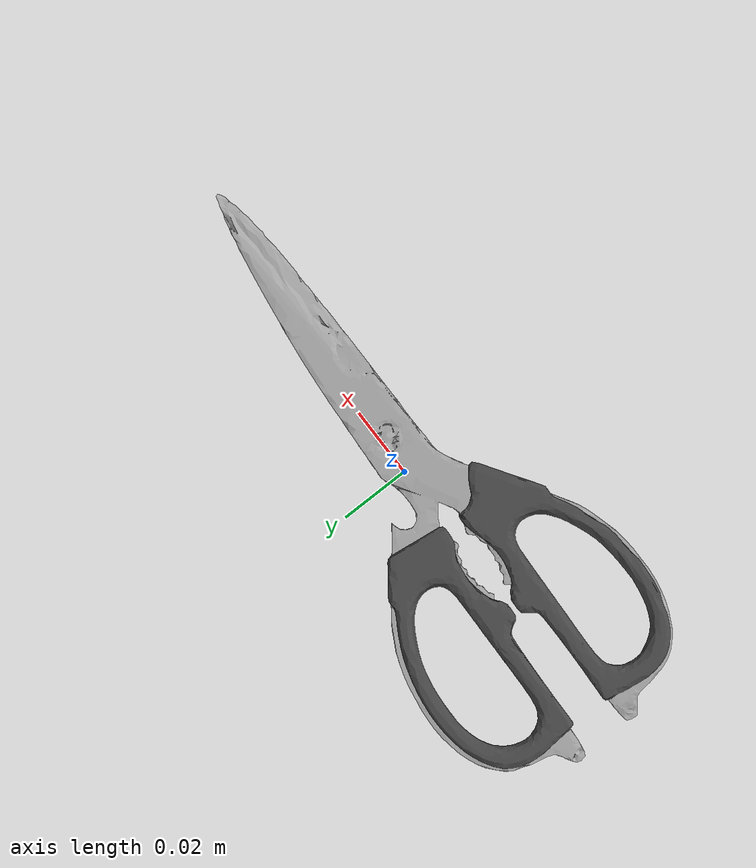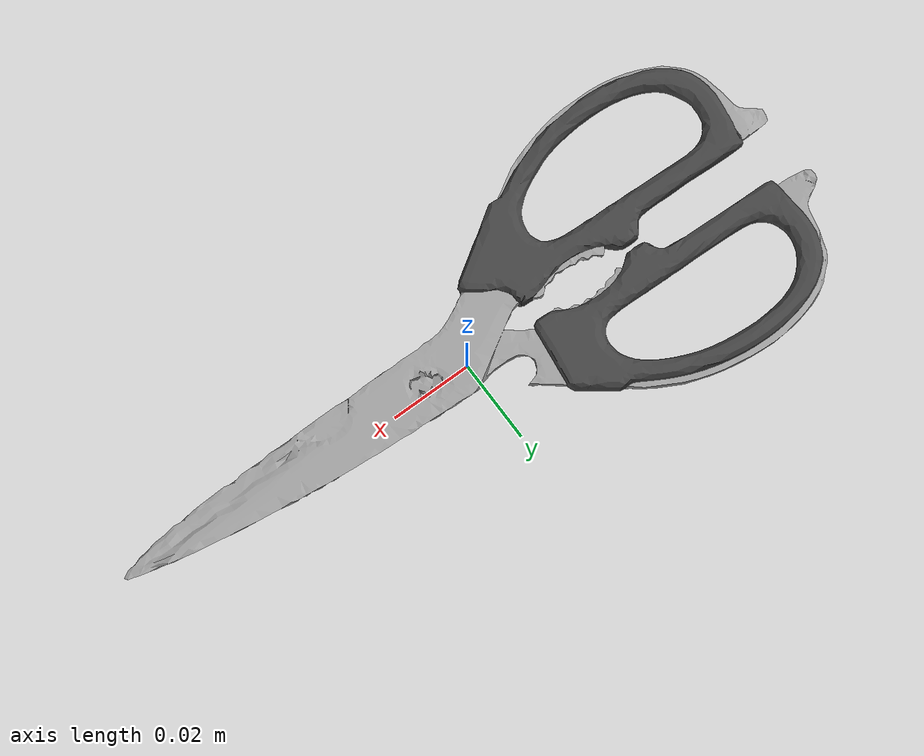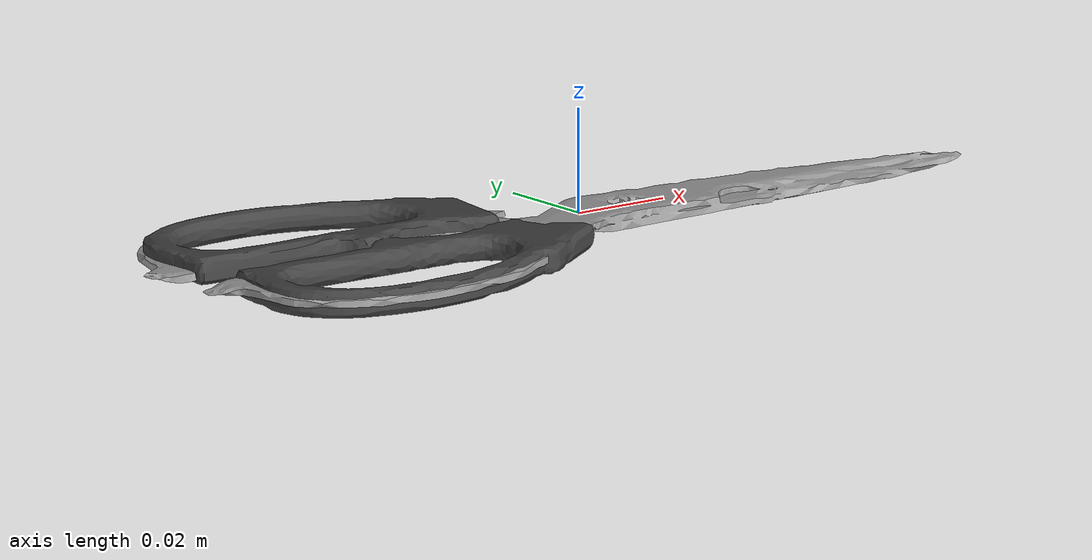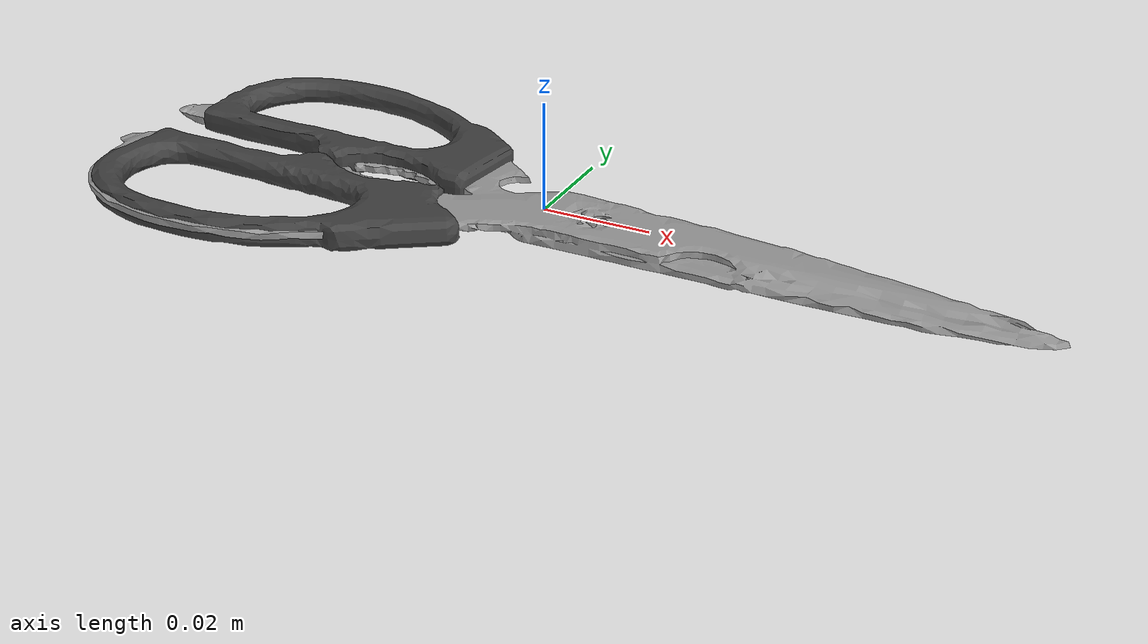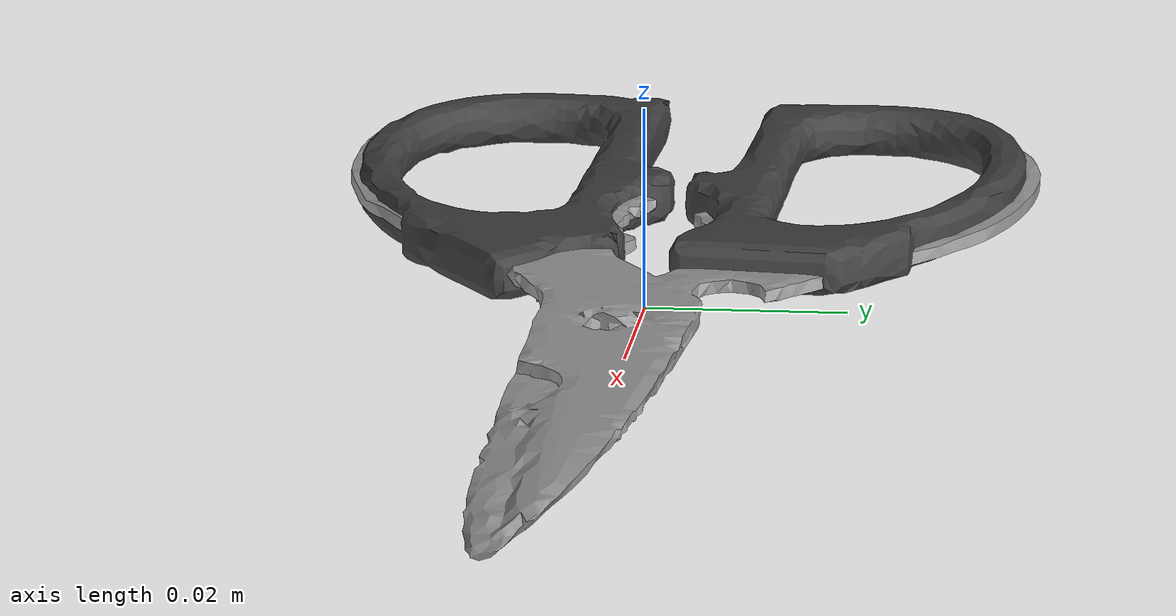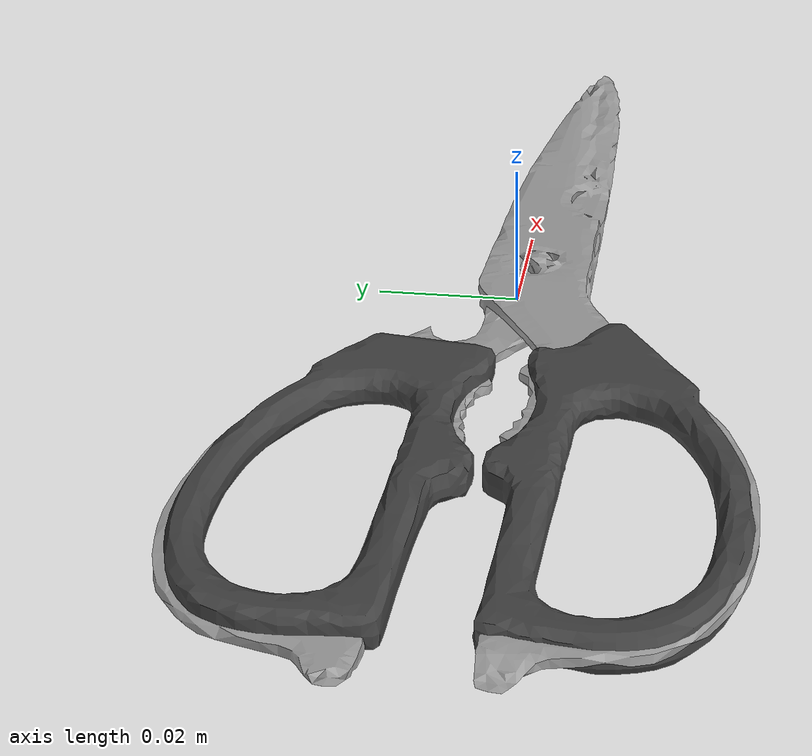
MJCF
<?xml version="1.0" ?>
<mujoco model="scissors_1">
	<compiler meshdir="scissors_1/meshes" texturedir="scissors_1/textures" angle="radian" autolimits="true" balanceinertia="true" boundmass="0.000001" boundinertia="0.000001"/>
	<default>
		<default class="visual">
			<geom contype="0" conaffinity="0"/>
		</default>
		<default class="collision">
			<geom rgba="1.0 0.0 0.0 0.0"/>
		</default>
	</default>
	<asset>
		<mesh name="Scissors1Plastics" file="stl/Scissors1Plastics.stl" scale="1.0 1.0 1.0"/>
		<mesh name="Scissors1Plastics_001" file="stl/Scissors1Plastics_001.stl" scale="1.0 1.0 1.0"/>
		<mesh name="Scissors1Plastics_002" file="stl/Scissors1Plastics_002.stl" scale="1.0 1.0 1.0"/>
		<mesh name="Scissors1Plastics_003" file="stl/Scissors1Plastics_003.stl" scale="1.0 1.0 1.0"/>
		<mesh name="Scissors1Plastics_004" file="stl/Scissors1Plastics_004.stl" scale="1.0 1.0 1.0"/>
		<mesh name="Scissors1Plastics_005" file="stl/Scissors1Plastics_005.stl" scale="1.0 1.0 1.0"/>
		<mesh name="Scissors1Plastics_006" file="stl/Scissors1Plastics_006.stl" scale="1.0 1.0 1.0"/>
		<mesh name="Scissors1Plastics_007" file="stl/Scissors1Plastics_007.stl" scale="1.0 1.0 1.0"/>
		<mesh name="Scissors1Plastics_008" file="stl/Scissors1Plastics_008.stl" scale="1.0 1.0 1.0"/>
		<mesh name="Scissors1Plastics_009" file="stl/Scissors1Plastics_009.stl" scale="1.0 1.0 1.0"/>
		<mesh name="Scissors1Plastics_010" file="stl/Scissors1Plastics_010.stl" scale="1.0 1.0 1.0"/>
		<mesh name="Scissors1Plastics_011" file="stl/Scissors1Plastics_011.stl" scale="1.0 1.0 1.0"/>
		<mesh name="Scissors1Plastics_012" file="stl/Scissors1Plastics_012.stl" scale="1.0 1.0 1.0"/>
		<mesh name="Scissors1Plastics_013" file="stl/Scissors1Plastics_013.stl" scale="1.0 1.0 1.0"/>
		<mesh name="Scissors1Plastics_014" file="stl/Scissors1Plastics_014.stl" scale="1.0 1.0 1.0"/>
		<mesh name="Scissors1Plastics_015" file="stl/Scissors1Plastics_015.stl" scale="1.0 1.0 1.0"/>
		<mesh name="Scissors1Plastics_016" file="stl/Scissors1Plastics_016.stl" scale="1.0 1.0 1.0"/>
		<mesh name="Scissors1Plastics_017" file="stl/Scissors1Plastics_017.stl" scale="1.0 1.0 1.0"/>
		<mesh name="Scissors1Plastics_018" file="stl/Scissors1Plastics_018.stl" scale="1.0 1.0 1.0"/>
		<mesh name="Scissors1Plastics_019" file="stl/Scissors1Plastics_019.stl" scale="1.0 1.0 1.0"/>
		<mesh name="Scissors1Plastics_020" file="stl/Scissors1Plastics_020.stl" scale="1.0 1.0 1.0"/>
		<mesh name="Scissors1Metal" file="stl/Scissors1Metal.stl" scale="1.0 1.0 1.0"/>
		<mesh name="Scissors1Metal_001" file="stl/Scissors1Metal_001.stl" scale="1.0 1.0 1.0"/>
		<mesh name="Scissors1Metal_002" file="stl/Scissors1Metal_002.stl" scale="1.0 1.0 1.0"/>
		<mesh name="Scissors1Metal_003" file="stl/Scissors1Metal_003.stl" scale="1.0 1.0 1.0"/>
		<mesh name="Scissors1Metal_004" file="stl/Scissors1Metal_004.stl" scale="1.0 1.0 1.0"/>
		<mesh name="Scissors1Metal_005" file="stl/Scissors1Metal_005.stl" scale="1.0 1.0 1.0"/>
		<mesh name="Scissors1Metal_006" file="stl/Scissors1Metal_006.stl" scale="1.0 1.0 1.0"/>
		<mesh name="Scissors1Metal_007" file="stl/Scissors1Metal_007.stl" scale="1.0 1.0 1.0"/>
		<mesh name="Scissors1Metal_008" file="stl/Scissors1Metal_008.stl" scale="1.0 1.0 1.0"/>
		<mesh name="Scissors1Metal_009" file="stl/Scissors1Metal_009.stl" scale="1.0 1.0 1.0"/>
		<mesh name="Scissors1Metal_010" file="stl/Scissors1Metal_010.stl" scale="1.0 1.0 1.0"/>
		<mesh name="Scissors1Metal_011" file="stl/Scissors1Metal_011.stl" scale="1.0 1.0 1.0"/>
		<mesh name="Scissors1Metal_012" file="stl/Scissors1Metal_012.stl" scale="1.0 1.0 1.0"/>
		<mesh name="Scissors1Metal_013" file="stl/Scissors1Metal_013.stl" scale="1.0 1.0 1.0"/>
		<mesh name="Scissors1Metal_014" file="stl/Scissors1Metal_014.stl" scale="1.0 1.0 1.0"/>
		<material name="M_Scissors1Plastics" rgba="0.2687999904155731 0.2687999904155731 0.2687999904155731 1.0" emission="0.0"/>
		<material name="M_Scissors1Metal" rgba="0.6306999921798706 0.6306999921798706 0.6306999921798706 1.0" emission="0.0"/>
	</asset>
	<worldbody>
		<body name="scissors_1" pos="0.0 0.0 0.0" quat="1.0 0.0 0.0 0.0">
			<body name="scissors1_plastics" pos="0.0 0.0 0.0" quat="1.0 0.0 0.0 0.0">
				<inertial mass="0.06911789625883102" pos="-0.04632521793246269 -0.0011474678758531809 2.4406856482528383e-06" quat="0.9999600052833557 -0.004458646290004253 -2.660231984918937e-05 0.007751482538878918" diaginertia="2.377882628934458e-05 0.00017969933105632663 0.00020322277850937098"/>
				<geom name="Scissors1Plastics" type="mesh" pos="0.0 0.0 0.0" quat="1.0 0.0 0.0 0.0" mesh="Scissors1Plastics" material="M_Scissors1Plastics" class="visual"/>
				<geom name="Scissors1Plastics_001" type="mesh" pos="0.0 0.0 0.0" quat="1.0 0.0 0.0 0.0" mesh="Scissors1Plastics_001" class="collision"/>
				<geom name="Scissors1Plastics_002" type="mesh" pos="0.0 0.0 0.0" quat="1.0 0.0 0.0 0.0" mesh="Scissors1Plastics_002" class="collision"/>
				<geom name="Scissors1Plastics_003" type="mesh" pos="0.0 0.0 0.0" quat="1.0 0.0 0.0 0.0" mesh="Scissors1Plastics_003" class="collision"/>
				<geom name="Scissors1Plastics_004" type="mesh" pos="0.0 0.0 0.0" quat="1.0 0.0 0.0 0.0" mesh="Scissors1Plastics_004" class="collision"/>
				<geom name="Scissors1Plastics_005" type="mesh" pos="0.0 0.0 0.0" quat="1.0 0.0 0.0 0.0" mesh="Scissors1Plastics_005" class="collision"/>
				<geom name="Scissors1Plastics_006" type="mesh" pos="0.0 0.0 0.0" quat="1.0 0.0 0.0 0.0" mesh="Scissors1Plastics_006" class="collision"/>
				<geom name="Scissors1Plastics_007" type="mesh" pos="0.0 0.0 0.0" quat="1.0 0.0 0.0 0.0" mesh="Scissors1Plastics_007" class="collision"/>
				<geom name="Scissors1Plastics_008" type="mesh" pos="0.0 0.0 0.0" quat="1.0 0.0 0.0 0.0" mesh="Scissors1Plastics_008" class="collision"/>
				<geom name="Scissors1Plastics_009" type="mesh" pos="0.0 0.0 0.0" quat="1.0 0.0 0.0 0.0" mesh="Scissors1Plastics_009" class="collision"/>
				<geom name="Scissors1Plastics_010" type="mesh" pos="0.0 0.0 0.0" quat="1.0 0.0 0.0 0.0" mesh="Scissors1Plastics_010" class="collision"/>
				<geom name="Scissors1Plastics_011" type="mesh" pos="0.0 0.0 0.0" quat="1.0 0.0 0.0 0.0" mesh="Scissors1Plastics_011" class="collision"/>
				<geom name="Scissors1Plastics_012" type="mesh" pos="0.0 0.0 0.0" quat="1.0 0.0 0.0 0.0" mesh="Scissors1Plastics_012" class="collision"/>
				<geom name="Scissors1Plastics_013" type="mesh" pos="0.0 0.0 0.0" quat="1.0 0.0 0.0 0.0" mesh="Scissors1Plastics_013" class="collision"/>
				<geom name="Scissors1Plastics_014" type="mesh" pos="0.0 0.0 0.0" quat="1.0 0.0 0.0 0.0" mesh="Scissors1Plastics_014" class="collision"/>
				<geom name="Scissors1Plastics_015" type="mesh" pos="0.0 0.0 0.0" quat="1.0 0.0 0.0 0.0" mesh="Scissors1Plastics_015" class="collision"/>
				<geom name="Scissors1Plastics_016" type="mesh" pos="0.0 0.0 0.0" quat="1.0 0.0 0.0 0.0" mesh="Scissors1Plastics_016" class="collision"/>
				<geom name="Scissors1Plastics_017" type="mesh" pos="0.0 0.0 0.0" quat="1.0 0.0 0.0 0.0" mesh="Scissors1Plastics_017" class="collision"/>
				<geom name="Scissors1Plastics_018" type="mesh" pos="0.0 0.0 0.0" quat="1.0 0.0 0.0 0.0" mesh="Scissors1Plastics_018" class="collision"/>
				<geom name="Scissors1Plastics_019" type="mesh" pos="0.0 0.0 0.0" quat="1.0 0.0 0.0 0.0" mesh="Scissors1Plastics_019" class="collision"/>
				<geom name="Scissors1Plastics_020" type="mesh" pos="0.0 0.0 0.0" quat="1.0 0.0 0.0 0.0" mesh="Scissors1Plastics_020" class="collision"/>
			</body>
			<body name="scissors1_metal" pos="0.0 0.0 0.0" quat="1.0 0.0 0.0 0.0">
				<inertial mass="0.04414314031600952" pos="-0.007116943132132292 -0.0018855701200664043 -0.0001600364048499614" quat="0.9997630715370178 -0.016199924051761627 -0.00011399905633879825 -0.01453721895813942" diaginertia="7.290732810361078e-06 8.119512494886294e-05 8.842754323268309e-05"/>
				<geom name="Scissors1Metal" type="mesh" pos="0.0 0.0 0.0" quat="1.0 0.0 0.0 0.0" mesh="Scissors1Metal" material="M_Scissors1Metal" class="visual"/>
				<geom name="Scissors1Metal_001" type="mesh" pos="0.0 0.0 0.0" quat="1.0 0.0 0.0 0.0" mesh="Scissors1Metal_001" class="collision"/>
				<geom name="Scissors1Metal_002" type="mesh" pos="0.0 0.0 0.0" quat="1.0 0.0 0.0 0.0" mesh="Scissors1Metal_002" class="collision"/>
				<geom name="Scissors1Metal_003" type="mesh" pos="0.0 0.0 0.0" quat="1.0 0.0 0.0 0.0" mesh="Scissors1Metal_003" class="collision"/>
				<geom name="Scissors1Metal_004" type="mesh" pos="0.0 0.0 0.0" quat="1.0 0.0 0.0 0.0" mesh="Scissors1Metal_004" class="collision"/>
				<geom name="Scissors1Metal_005" type="mesh" pos="0.0 0.0 0.0" quat="1.0 0.0 0.0 0.0" mesh="Scissors1Metal_005" class="collision"/>
				<geom name="Scissors1Metal_006" type="mesh" pos="0.0 0.0 0.0" quat="1.0 0.0 0.0 0.0" mesh="Scissors1Metal_006" class="collision"/>
				<geom name="Scissors1Metal_007" type="mesh" pos="0.0 0.0 0.0" quat="1.0 0.0 0.0 0.0" mesh="Scissors1Metal_007" class="collision"/>
				<geom name="Scissors1Metal_008" type="mesh" pos="0.0 0.0 0.0" quat="1.0 0.0 0.0 0.0" mesh="Scissors1Metal_008" class="collision"/>
				<geom name="Scissors1Metal_009" type="mesh" pos="0.0 0.0 0.0" quat="1.0 0.0 0.0 0.0" mesh="Scissors1Metal_009" class="collision"/>
				<geom name="Scissors1Metal_010" type="mesh" pos="0.0 0.0 0.0" quat="1.0 0.0 0.0 0.0" mesh="Scissors1Metal_010" class="collision"/>
				<geom name="Scissors1Metal_011" type="mesh" pos="0.0 0.0 0.0" quat="1.0 0.0 0.0 0.0" mesh="Scissors1Metal_011" class="collision"/>
				<geom name="Scissors1Metal_012" type="mesh" pos="0.0 0.0 0.0" quat="1.0 0.0 0.0 0.0" mesh="Scissors1Metal_012" class="collision"/>
				<geom name="Scissors1Metal_013" type="mesh" pos="0.0 0.0 0.0" quat="1.0 0.0 0.0 0.0" mesh="Scissors1Metal_013" class="collision"/>
				<geom name="Scissors1Metal_014" type="mesh" pos="0.0 0.0 0.0" quat="1.0 0.0 0.0 0.0" mesh="Scissors1Metal_014" class="collision"/>
			</body>
		</body>
	</worldbody>
	<equality/>
</mujoco>
